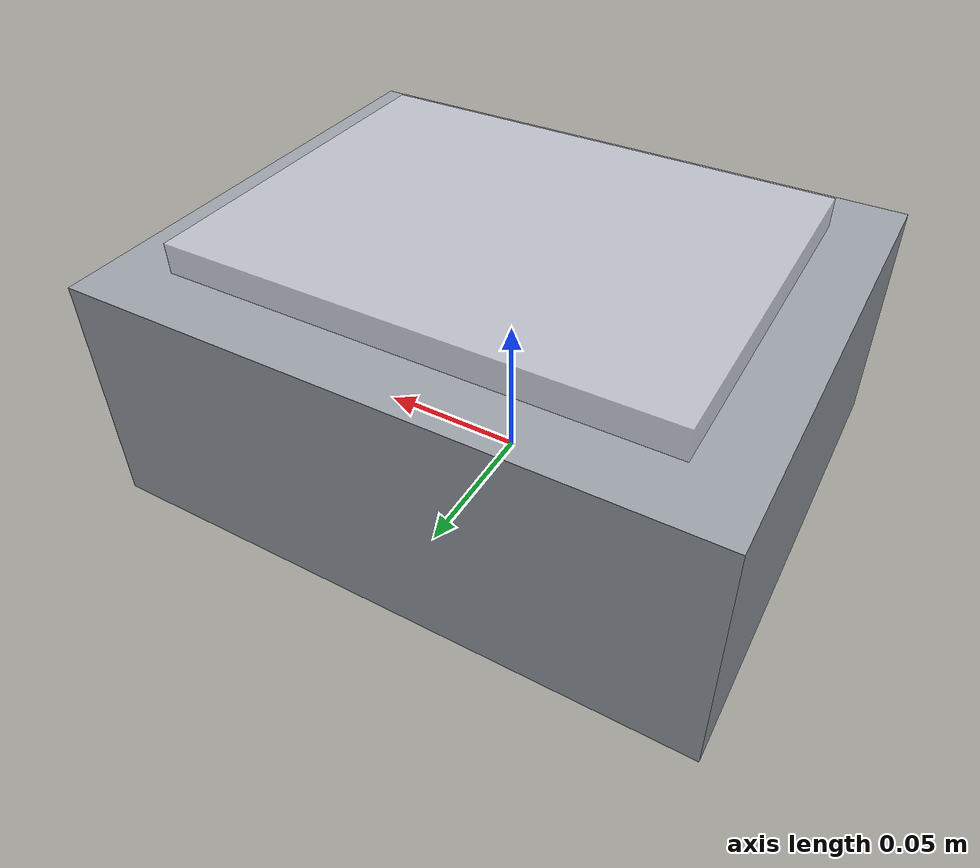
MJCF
<?xml version="1.0" encoding="utf-8"?>
<mujoco model="blister_pack_sealer">
  <compiler angle="radian" autolimits="true"/>
  <default>
    <default class="body"><geom contype="1" conaffinity="1"/></default>
  </default>
  <worldbody>
    <body name="base">
      <geom type="box" size="0.1 0.08 0.04" pos="0 0 0.04" rgba="0.6 0.62 0.65 1" class="body"/>
      <geom type="box" size="0.03 0.004 0.01" pos="-0.05 -0.07200000000000001 0.06" rgba="0.9 0.7 0.1 1" class="body"/>
      <body name="seal_plate" pos="0 0 0.085">
        <joint name="seal_plate_joint" type="slide" axis="0 0 1" range="-0.03 0" damping="1.0" frictionloss="0.5"/>
  <geom type="box" size="0.08 0.06 0.005" pos="0 0 0" rgba="0.85 0.85 0.9 0.6" class="body"/>
      </body>
    </body>
  </worldbody>
</mujoco>
